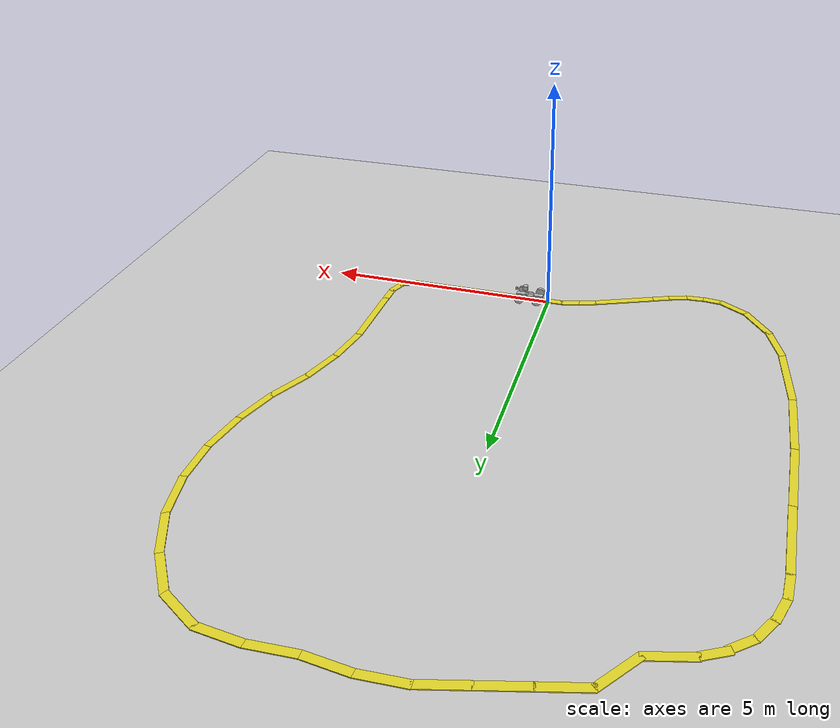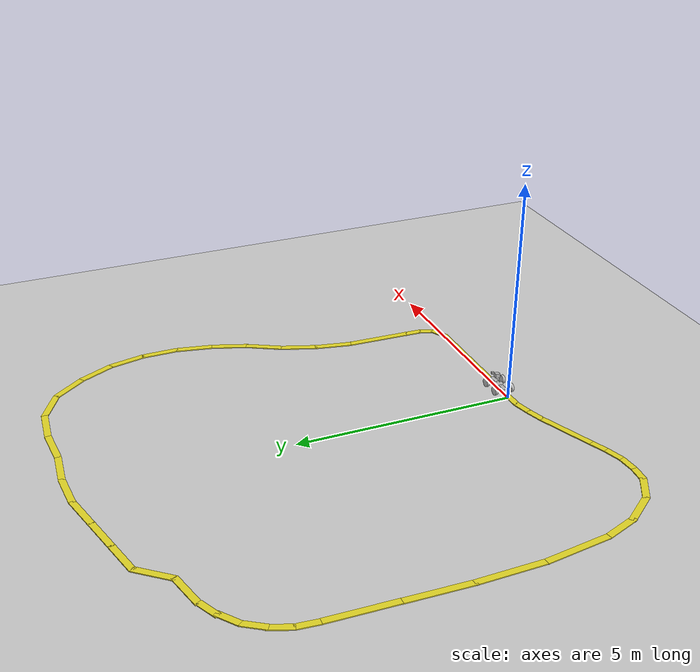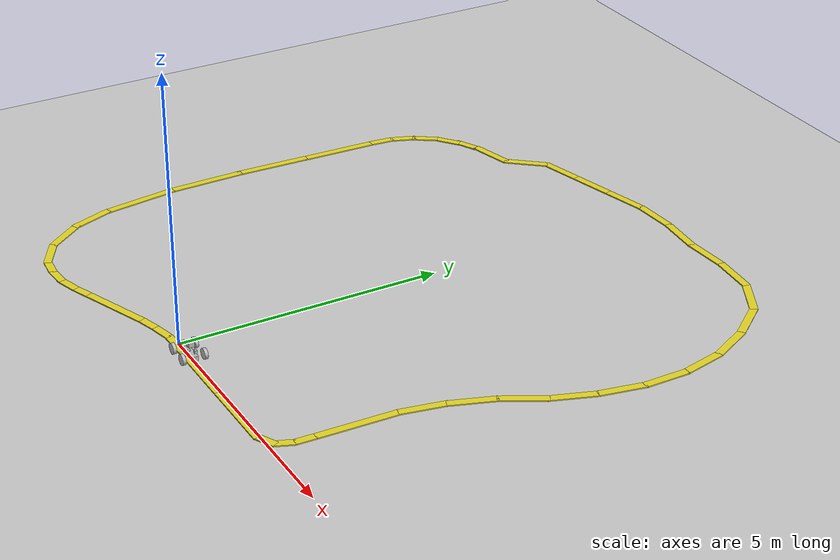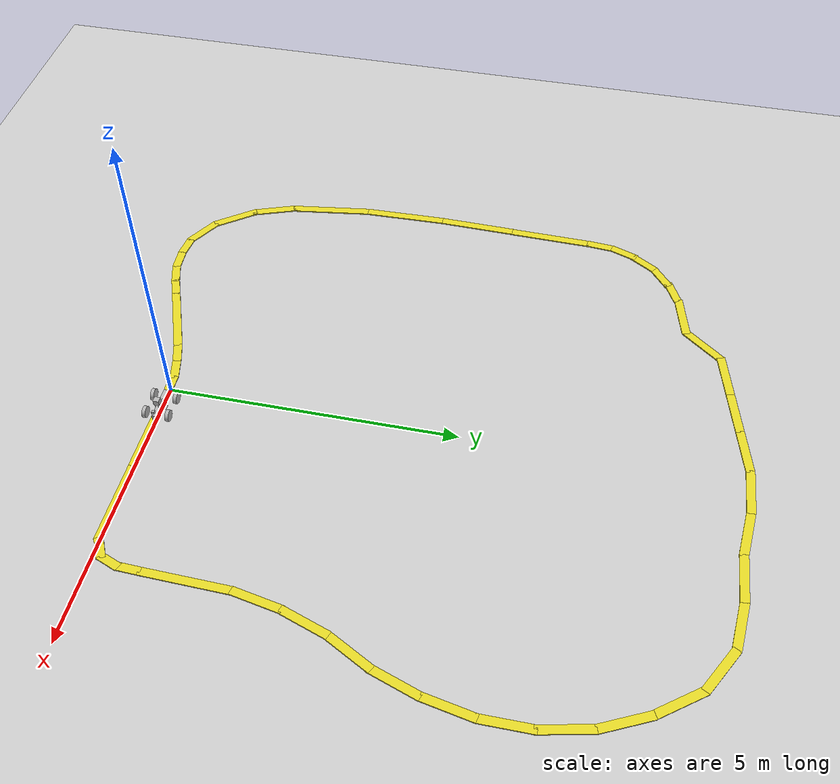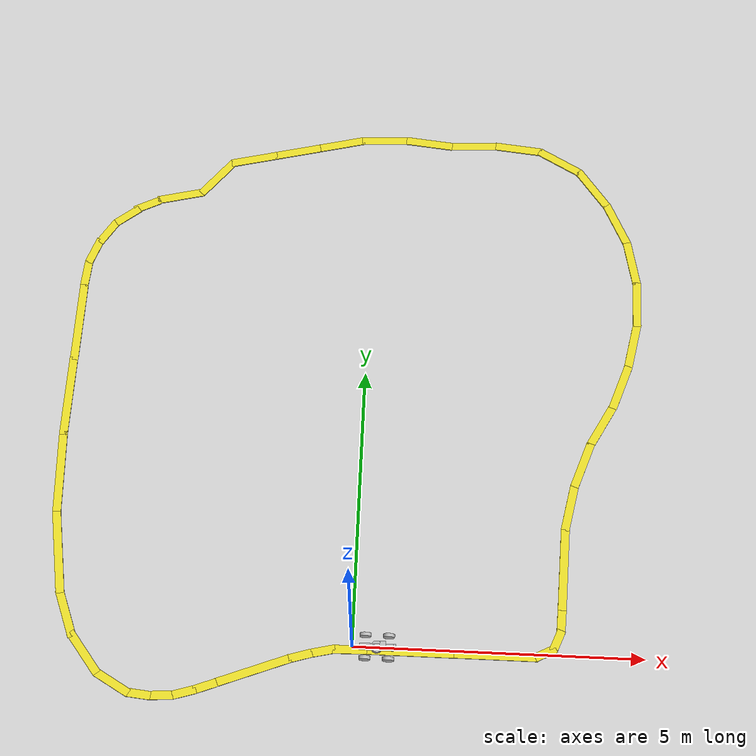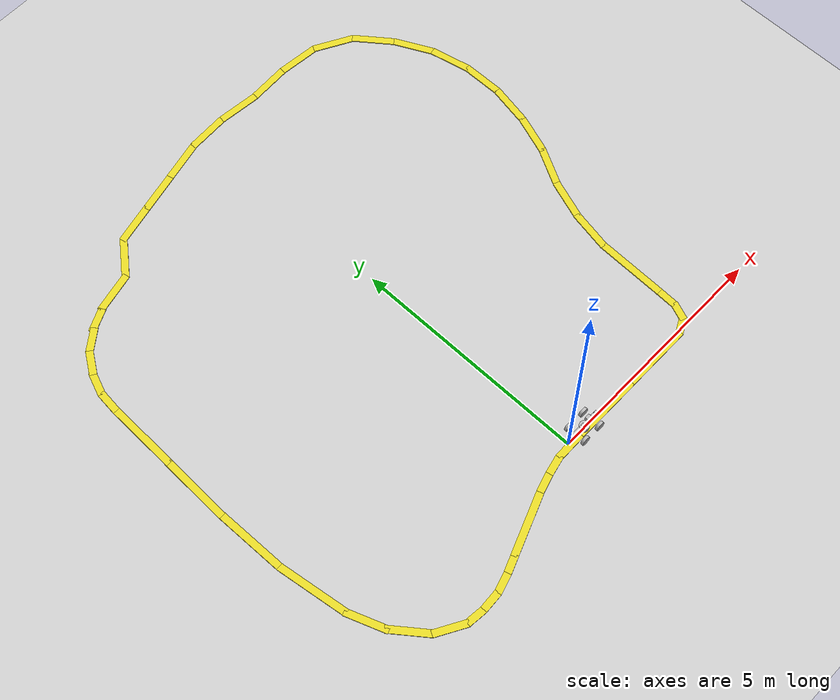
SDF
<sdf version="1.6">
 <world name="default">
  <light name="sun" type="directional">
   <pose>0 0 10 0 -0 0</pose>
   <diffuse>0.8 0.8 0.8 1</diffuse>
   <specular>0.2 0.2 0.2 1</specular>
   <attenuation>
    <range>1000</range>
    <constant>0.9</constant>
    <linear>0.01</linear>
    <quadratic>0.001</quadratic>
   </attenuation>
   <direction>-0.5 0.1 -0.9</direction>
  </light>
  <model name="ground_plane">
   <static>1</static>
   <link name="link">
    <collision name="collision">
     <geometry><plane><normal>0 0 1</normal><size>100 100</size></plane></geometry>
     <surface>
      <contact><collide_bitmask>65535</collide_bitmask></contact>
      <friction><ode><mu>100</mu><mu2>50</mu2></ode></friction>
     </surface>
    </collision>
    <visual name="visual">
     <cast_shadows>0</cast_shadows>
     <geometry><plane><normal>0 0 1</normal><size>100 100</size></plane></geometry>
     <material>
      <script><uri>file://media/materials/scripts/gazebo.material</uri><name>Gazebo/Grey</name></script>
     </material>
    </visual>
   </link>
  </model>
  <gravity>0 0 -9.8</gravity>
  <magnetic_field>6e-06 2.3e-05 -4.2e-05</magnetic_field>
  <atmosphere type="adiabatic"/>
  <physics name="default_physics" default="0" type="ode">
   <max_step_size>0.001</max_step_size>
   <real_time_factor>1</real_time_factor>
   <real_time_update_rate>1000</real_time_update_rate>
  </physics>
  <scene><ambient>0.4 0.4 0.4 1</ambient><background>0.7 0.7 0.7 1</background><shadows>1</shadows></scene>
  <audio><device>default</device></audio>
  <spherical_coordinates>
   <surface_model>EARTH_WGS84</surface_model>
   <latitude_deg>0</latitude_deg>
   <longitude_deg>0</longitude_deg>
   <elevation>0</elevation>
   <heading_deg>0</heading_deg>
  </spherical_coordinates>
  <model name="new_robot">
   <link name="base_link">
    <inertial>
     <mass>60</mass>
     <inertia>
      <ixx>1.728</ixx>
      <ixy>5.55112e-17</ixy>
      <ixz>-6.5e-07</ixz>
      <iyy>1.708</iyy>
      <iyz>0</iyz>
      <izz>3.308</izz>
     </inertia>
    </inertial>
    <collision name="base_link_collision">
     <geometry><cylinder><length>0.1</length><radius>0.1</radius></cylinder></geometry>
    </collision>
    <collision name="base_link_fixed_joint_lump__camera_link_collision_1">
     <pose>0.3 0 0.15 0 -0 0</pose>
     <geometry><box><size>0.05 0.05 0.05</size></box></geometry>
    </collision>
    <collision name="base_link_fixed_joint_lump__hokuyo_link_collision_2">
     <pose>0.1 0 0.2 0 -0 0</pose>
     <geometry><box><size>0.1 0.1 0.1</size></box></geometry>
    </collision>
    <collision name="base_link_fixed_joint_lump__link_1_collision_3">
     <geometry><box><size>0.6 0.1 0.1</size></box></geometry>
    </collision>
    <visual name="base_link_visual">
     <geometry><cylinder><length>0.1</length><radius>0.1</radius></cylinder></geometry>
    </visual>
    <visual name="base_link_fixed_joint_lump__camera_link_visual_1">
     <pose>0.3 0 0.15 0 -0 0</pose>
     <geometry><box><size>0.05 0.05 0.05</size></box></geometry>
     <material><script><uri>__default__</uri><name>__default__</name></script></material>
    </visual>
    <visual name="base_link_fixed_joint_lump__hokuyo_link_visual_2">
     <pose>0.1 0 0.2 0 -0 0</pose>
     <geometry><box><size>0.1 0.1 0.1</size></box></geometry>
     <material><script><uri>__default__</uri><name>__default__</name></script></material>
    </visual>
    <visual name="base_link_fixed_joint_lump__link_1_visual_3">
     <geometry><box><size>0.6 0.1 0.1</size></box></geometry>
    </visual>
    <visual name="base_link_fixed_joint_lump__left_front_wheelholder_link_visual_4">
     <pose>0.2 0.2 0 0 -0 0</pose>
     <geometry><box><size>0.01 0.01 0.01</size></box></geometry>
    </visual>
    <visual name="base_link_fixed_joint_lump__left_rear_wheelholder_link_visual_5">
     <pose>-0.2 0.2 0 0 -0 0</pose>
     <geometry><box><size>0.01 0.01 0.01</size></box></geometry>
    </visual>
    <visual name="base_link_fixed_joint_lump__right_front_wheelholder_link_visual_6">
     <pose>0.2 -0.2 0 0 -0 0</pose>
     <geometry><box><size>0.01 0.01 0.01</size></box></geometry>
    </visual>
    <visual name="base_link_fixed_joint_lump__right_rear_wheelholder_link_visual_7">
     <pose>-0.2 -0.2 0 0 -0 0</pose>
     <geometry><box><size>0.01 0.01 0.01</size></box></geometry>
    </visual>
    <sensor name="camera1" type="camera">
     <update_rate>30</update_rate>
     <camera name="head">
      <horizontal_fov>1.39626</horizontal_fov>
      <image><width>800</width><height>800</height><format>R8G8B8</format></image>
      <clip><near>0.02</near><far>300</far></clip>
      <noise><type>gaussian</type><mean>0</mean><stddev>0.007</stddev></noise>
     </camera>
     <plugin name="camera_controller" filename="libgazebo_ros_camera.so">
      <alwaysOn>1</alwaysOn>
      <updateRate>0.0</updateRate>
      <cameraName>rrbot/camera1</cameraName>
      <imageTopicName>image_raw</imageTopicName>
      <cameraInfoTopicName>camera_info</cameraInfoTopicName>
      <frameName>camera_link</frameName>
      <hackBaseline>0.07</hackBaseline>
      <distortionK1>0.0</distortionK1>
      <distortionK2>0.0</distortionK2>
      <distortionK3>0.0</distortionK3>
      <distortionT1>0.0</distortionT1>
      <distortionT2>0.0</distortionT2>
      <robotNamespace>/</robotNamespace>
     </plugin>
     <pose>0.3 0 0.15 0 -0 0</pose>
    </sensor>
    <sensor name="head_hokuyo_sensor" type="ray">
     <visualize>0</visualize>
     <update_rate>40</update_rate>
     <ray>
      <scan>
       <horizontal>
        <samples>720</samples>
        <resolution>1</resolution>
        <min_angle>-1.5708</min_angle>
        <max_angle>1.5708</max_angle>
       </horizontal>
       <vertical><samples>1</samples><min_angle>0</min_angle><max_angle>0</max_angle></vertical>
      </scan>
      <range><min>0.1</min><max>30</max><resolution>0.01</resolution></range>
      <noise><type>gaussian</type><mean>0</mean><stddev>0.01</stddev></noise>
     </ray>
     <plugin name="gazebo_ros_head_hokuyo_controller" filename="libgazebo_ros_laser.so">
      <topicName>/rrbot/laser/scan</topicName>
      <frameName>hokuyo_link</frameName>
      <robotNamespace>/</robotNamespace>
     </plugin>
     <pose>0.1 0 0.2 0 -0 0</pose>
    </sensor>
   </link>
   <link name="left_front_wheel_link">
    <pose>0.2 0.2 0 0 -0 0</pose>
    <inertial>
     <mass>2.5</mass>
     <inertia><ixx>0.0016</ixx><ixy>0</ixy><ixz>0</ixz><iyy>0.0016</iyy><iyz>0</iyz><izz>0.003</izz></inertia>
    </inertial>
    <collision name="left_front_wheel_link_collision">
     <pose>0 0 0 1.57079 -0 0</pose>
     <geometry><cylinder><length>0.06</length><radius>0.1</radius></cylinder></geometry>
     <surface>
      <contact><ode><kp>1e+07</kp><kd>1</kd></ode></contact>
      <friction><ode><mu>0.85</mu><mu2>0.2</mu2><fdir1>1 0 0</fdir1></ode></friction>
     </surface>
    </collision>
    <visual name="left_front_wheel_link_visual">
     <pose>0 0 0 1.57079 -0 0</pose>
     <geometry><cylinder><length>0.06</length><radius>0.1</radius></cylinder></geometry>
     <material><script><uri>__default__</uri><name>__default__</name></script></material>
    </visual>
   </link>
   <joint name="left_front_wheel_joint" type="revolute">
    <child>left_front_wheel_link</child>
    <parent>base_link</parent>
    <axis>
     <xyz>0 1 0</xyz>
     <limit><lower>-1e+16</lower><upper>1e+16</upper></limit>
     <dynamics><spring_reference>0</spring_reference><spring_stiffness>0</spring_stiffness></dynamics>
     <use_parent_model_frame>1</use_parent_model_frame>
    </axis>
   </joint>
   <link name="left_rear_wheel_link">
    <pose>-0.2 0.2 0 0 -0 0</pose>
    <inertial>
     <mass>2.5</mass>
     <inertia><ixx>0.0016</ixx><ixy>0</ixy><ixz>0</ixz><iyy>0.0016</iyy><iyz>0</iyz><izz>0.003</izz></inertia>
    </inertial>
    <collision name="left_rear_wheel_link_collision">
     <pose>0 0 0 1.57079 -0 0</pose>
     <geometry><cylinder><length>0.06</length><radius>0.1</radius></cylinder></geometry>
     <surface>
      <contact><ode><kp>1e+07</kp><kd>1</kd></ode></contact>
      <friction><ode><mu>0.85</mu><mu2>0.2</mu2><fdir1>1 0 0</fdir1></ode></friction>
     </surface>
    </collision>
    <visual name="left_rear_wheel_link_visual">
     <pose>0 0 0 1.57079 -0 0</pose>
     <geometry><cylinder><length>0.06</length><radius>0.1</radius></cylinder></geometry>
     <material><script><uri>__default__</uri><name>__default__</name></script></material>
    </visual>
   </link>
   <joint name="left_rear_wheel_joint" type="revolute">
    <child>left_rear_wheel_link</child>
    <parent>base_link</parent>
    <axis>
     <xyz>0 1 0</xyz>
     <limit><lower>-1e+16</lower><upper>1e+16</upper></limit>
     <dynamics><spring_reference>0</spring_reference><spring_stiffness>0</spring_stiffness></dynamics>
     <use_parent_model_frame>1</use_parent_model_frame>
    </axis>
   </joint>
   <link name="right_front_wheel_link">
    <pose>0.2 -0.2 0 0 -0 0</pose>
    <inertial>
     <mass>2.5</mass>
     <inertia><ixx>0.0016</ixx><ixy>0</ixy><ixz>0</ixz><iyy>0.0016</iyy><iyz>0</iyz><izz>0.003</izz></inertia>
    </inertial>
    <collision name="right_front_wheel_link_collision">
     <pose>0 0 0 1.57079 -0 0</pose>
     <geometry><cylinder><length>0.06</length><radius>0.1</radius></cylinder></geometry>
     <surface>
      <contact><ode><kp>1e+07</kp><kd>1</kd></ode></contact>
      <friction><ode><mu>0.85</mu><mu2>0.2</mu2><fdir1>1 0 0</fdir1></ode></friction>
     </surface>
    </collision>
    <visual name="right_front_wheel_link_visual">
     <pose>0 0 0 1.57079 -0 0</pose>
     <geometry><cylinder><length>0.06</length><radius>0.1</radius></cylinder></geometry>
     <material><script><uri>__default__</uri><name>__default__</name></script></material>
    </visual>
   </link>
   <joint name="right_front_wheel_joint" type="revolute">
    <child>right_front_wheel_link</child>
    <parent>base_link</parent>
    <axis>
     <xyz>0 1 0</xyz>
     <limit><lower>-1e+16</lower><upper>1e+16</upper></limit>
     <dynamics><spring_reference>0</spring_reference><spring_stiffness>0</spring_stiffness></dynamics>
     <use_parent_model_frame>1</use_parent_model_frame>
    </axis>
   </joint>
   <link name="right_rear_wheel_link">
    <pose>-0.2 -0.2 0 0 -0 0</pose>
    <inertial>
     <mass>2.5</mass>
     <inertia><ixx>0.0016</ixx><ixy>0</ixy><ixz>0</ixz><iyy>0.0016</iyy><iyz>0</iyz><izz>0.003</izz></inertia>
    </inertial>
    <collision name="right_rear_wheel_link_collision">
     <pose>0 0 0 1.57079 -0 0</pose>
     <geometry><cylinder><length>0.06</length><radius>0.1</radius></cylinder></geometry>
     <surface>
      <contact><ode><kp>1e+07</kp><kd>1</kd></ode></contact>
      <friction><ode><mu>0.85</mu><mu2>0.2</mu2><fdir1>1 0 0</fdir1></ode></friction>
     </surface>
    </collision>
    <visual name="right_rear_wheel_link_visual">
     <pose>0 0 0 1.57079 -0 0</pose>
     <geometry><cylinder><length>0.06</length><radius>0.1</radius></cylinder></geometry>
     <material><script><uri>__default__</uri><name>__default__</name></script></material>
    </visual>
   </link>
   <joint name="right_rear_wheel_joint" type="revolute">
    <child>right_rear_wheel_link</child>
    <parent>base_link</parent>
    <axis>
     <xyz>0 1 0</xyz>
     <limit><lower>-1e+16</lower><upper>1e+16</upper></limit>
     <dynamics><spring_reference>0</spring_reference><spring_stiffness>0</spring_stiffness></dynamics>
     <use_parent_model_frame>1</use_parent_model_frame>
    </axis>
   </joint>
   <plugin name="differential_drive_controller" filename="libgazebo_ros_diff_drive.so">
    <updateRate>20</updateRate>
    <leftJoint>left_front_wheel_joint</leftJoint>
    <rightJoint>right_front_wheel_joint</rightJoint>
    <wheelSeparation>0.4</wheelSeparation>
    <wheelDiameter>0.2</wheelDiameter>
    <wheelAcceleration>1.0</wheelAcceleration>
    <wheelTorque>30</wheelTorque>
    <commandTopic>/cmd_vel</commandTopic>
    <odometryTopic>odom</odometryTopic>
    <odometryFrame>odom</odometryFrame>
    <robotBaseFrame>base_link</robotBaseFrame>
    <odometrySource>1</odometrySource>
    <publishWheelTF>1</publishWheelTF>
    <publishOdom>1</publishOdom>
    <publishOdomTF>0</publishOdomTF>
    <publishWheelJointState>1</publishWheelJointState>
    <legacyMode>0</legacyMode>
    <robotNamespace>/</robotNamespace>
   </plugin>
   <plugin name="differential_drive_controller" filename="libgazebo_ros_diff_drive.so">
    <updateRate>20</updateRate>
    <leftJoint>left_rear_wheel_link</leftJoint>
    <rightJoint>right_rear_wheel_link</rightJoint>
    <wheelSeparation>0.6</wheelSeparation>
    <wheelDiameter>0.2</wheelDiameter>
    <wheelAcceleration>1.0</wheelAcceleration>
    <wheelTorque>30</wheelTorque>
    <commandTopic>/cmd_vel</commandTopic>
    <odometryTopic>odom</odometryTopic>
    <odometryFrame>odom</odometryFrame>
    <robotBaseFrame>base_link</robotBaseFrame>
    <odometrySource>1</odometrySource>
    <publishWheelTF>1</publishWheelTF>
    <publishOdom>1</publishOdom>
    <publishOdomTF>0</publishOdomTF>
    <publishWheelJointState>1</publishWheelJointState>
    <legacyMode>0</legacyMode>
    <robotNamespace>/</robotNamespace>
   </plugin>
   <plugin name="imu_plugin" filename="libgazebo_ros_imu.so">
    <alwaysOn>1</alwaysOn>
    <bodyName>base_link</bodyName>
    <topicName>imu/data</topicName>
    <serviceName>imu_service</serviceName>
    <gaussianNoise>0.0</gaussianNoise>
    <updateRate>20.0</updateRate>
    <robotNamespace>/</robotNamespace>
   </plugin>
   <static>0</static>
   <plugin name="gazebo_ros_gps" filename="libhector_gazebo_ros_gps.so">
    <updateRate>4.0</updateRate>
    <bodyName>base_link</bodyName>
    <frameId>gps_link</frameId>
    <topicName>/gps/fix</topicName>
    <velocityTopicName>/gps/fix_velocity</velocityTopicName>
    <referenceLatitude>41.22</referenceLatitude>
    <referenceLongitude>30.10</referenceLongitude>
    <referenceHeading>90</referenceHeading>
    <referenceAltitude>10</referenceAltitude>
    <offset>0 0 0</offset>
    <drift>0.0 0.0 0.0</drift>
    <gaussianNoise>0.0 0.0 0.0</gaussianNoise>
    <velocityDrift>0.001 0.001 0.001</velocityDrift>
    <velocityGaussianNoise>0.5 0.5 0.5</velocityGaussianNoise>
    <robotNamespace>/</robotNamespace>
   </plugin>
   <pose>0.42458 -0.001335 0.09999 1e-06 6e-06 -0.005031</pose>
  </model>
  <model name="unit_box">
   <static>1</static>
   <pose>0.997641 -0.039919 4.6e-05 0 -0 0</pose>
   <link name="link">
    <gravity>0</gravity>
    <inertial>
     <mass>1</mass>
     <inertia>
      <ixx>0.166667</ixx>
      <ixy>0</ixy>
      <ixz>0</ixz>
      <iyy>0.166667</iyy>
      <iyz>0</iyz>
      <izz>0.166667</izz>
     </inertia>
    </inertial>
    <collision name="collision"><geometry><box><size>0 0 0</size></box></geometry></collision>
    <visual name="visual">
     <geometry><box><size>1.484 0.147 0.021</size></box></geometry>
     <material>
      <script><name>Gazebo/Yellow</name><uri>file://media/materials/scripts/gazebo.material</uri></script>
     </material>
    </visual>
   </link>
  </model>
  <model name="unit_box_clone">
   <static>1</static>
   <pose>2.43042 -0.038085 4.6e-05 0 -0 0</pose>
   <link name="link">
    <gravity>0</gravity>
    <inertial>
     <mass>1</mass>
     <inertia>
      <ixx>0.166667</ixx>
      <ixy>0</ixy>
      <ixz>0</ixz>
      <iyy>0.166667</iyy>
      <iyz>0</iyz>
      <izz>0.166667</izz>
     </inertia>
    </inertial>
    <collision name="collision"><geometry><box><size>0 0 0</size></box></geometry></collision>
    <visual name="visual">
     <geometry><box><size>1.484 0.147 0.021</size></box></geometry>
     <material>
      <script><name>Gazebo/Yellow</name><uri>file://media/materials/scripts/gazebo.material</uri></script>
     </material>
    </visual>
   </link>
  </model>
  <model name="unit_box_clone_0">
   <static>1</static>
   <pose>3.2971 0.042162 4.6e-05 0 -0 0.467138</pose>
   <link name="link">
    <gravity>0</gravity>
    <inertial>
     <mass>1</mass>
     <inertia>
      <ixx>0.166667</ixx>
      <ixy>0</ixy>
      <ixz>0</ixz>
      <iyy>0.166667</iyy>
      <iyz>0</iyz>
      <izz>0.166667</izz>
     </inertia>
    </inertial>
    <collision name="collision"><geometry><box><size>0 0 0</size></box></geometry></collision>
    <visual name="visual">
     <geometry><box><size>0.392325 0.147 0.021</size></box></geometry>
     <material>
      <script><name>Gazebo/Yellow</name><uri>file://media/materials/scripts/gazebo.material</uri></script>
     </material>
    </visual>
   </link>
  </model>
  <model name="unit_box_clone_0_clone">
   <static>1</static>
   <pose>3.4989 0.269404 4.6e-05 0 -0 1.19296</pose>
   <link name="link">
    <gravity>0</gravity>
    <inertial>
     <mass>1</mass>
     <inertia>
      <ixx>0.166667</ixx>
      <ixy>0</ixy>
      <ixz>0</ixz>
      <iyy>0.166667</iyy>
      <iyz>0</iyz>
      <izz>0.166667</izz>
     </inertia>
    </inertial>
    <collision name="collision"><geometry><box><size>0 0 0</size></box></geometry></collision>
    <visual name="visual">
     <geometry><box><size>0.392326 0.147 0.021</size></box></geometry>
     <material>
      <script><name>Gazebo/Yellow</name><uri>file://media/materials/scripts/gazebo.material</uri></script>
     </material>
    </visual>
   </link>
  </model>
  <model name="unit_box_clone_0_clone_0">
   <static>1</static>
   <pose>3.56422 0.606781 4.6e-05 0 -0 1.53033</pose>
   <link name="link">
    <gravity>0</gravity>
    <inertial>
     <mass>1</mass>
     <inertia>
      <ixx>0.166667</ixx>
      <ixy>0</ixy>
      <ixz>0</ixz>
      <iyy>0.166667</iyy>
      <iyz>0</iyz>
      <izz>0.166667</izz>
     </inertia>
    </inertial>
    <collision name="collision"><geometry><box><size>0 0 0</size></box></geometry></collision>
    <visual name="visual">
     <geometry><box><size>0.392326 0.147 0.021</size></box></geometry>
     <material>
      <script><name>Gazebo/Yellow</name><uri>file://media/materials/scripts/gazebo.material</uri></script>
     </material>
    </visual>
   </link>
  </model>
  <model name="unit_box_clone_clone">
   <static>1</static>
   <pose>3.59254 1.50695 4.6e-05 0 0 -1.59906</pose>
   <link name="link">
    <gravity>0</gravity>
    <inertial>
     <mass>1</mass>
     <inertia>
      <ixx>0.166667</ixx>
      <ixy>0</ixy>
      <ixz>0</ixz>
      <iyy>0.166667</iyy>
      <iyz>0</iyz>
      <izz>0.166667</izz>
     </inertia>
    </inertial>
    <collision name="collision"><geometry><box><size>0 0 0</size></box></geometry></collision>
    <visual name="visual">
     <geometry><box><size>1.484 0.147 0.021</size></box></geometry>
     <material>
      <script><name>Gazebo/Yellow</name><uri>file://media/materials/scripts/gazebo.material</uri></script>
     </material>
    </visual>
   </link>
  </model>
  <model name="unit_box_clone_clone_clone">
   <static>1</static>
   <pose>3.69131 2.65819 4.6e-05 0 0 -1.76385</pose>
   <link name="link">
    <gravity>0</gravity>
    <inertial>
     <mass>1</mass>
     <inertia>
      <ixx>0.166667</ixx>
      <ixy>0</ixy>
      <ixz>0</ixz>
      <iyy>0.166667</iyy>
      <iyz>0</iyz>
      <izz>0.166667</izz>
     </inertia>
    </inertial>
    <collision name="collision"><geometry><box><size>0 0 0</size></box></geometry></collision>
    <visual name="visual">
     <geometry><box><size>0.867362 0.147 0.021</size></box></geometry>
     <material>
      <script><name>Gazebo/Yellow</name><uri>file://media/materials/scripts/gazebo.material</uri></script>
     </material>
    </visual>
   </link>
  </model>
  <model name="unit_box_clone_clone_clone_clone">
   <static>1</static>
   <pose>3.909 3.44845 4.6e-05 0 0 -1.90739</pose>
   <link name="link">
    <gravity>0</gravity>
    <inertial>
     <mass>1</mass>
     <inertia>
      <ixx>0.166667</ixx>
      <ixy>0</ixy>
      <ixz>0</ixz>
      <iyy>0.166667</iyy>
      <iyz>0</iyz>
      <izz>0.166667</izz>
     </inertia>
    </inertial>
    <collision name="collision"><geometry><box><size>0 0 0</size></box></geometry></collision>
    <visual name="visual">
     <geometry><box><size>0.867362 0.147 0.021</size></box></geometry>
     <material>
      <script><name>Gazebo/Yellow</name><uri>file://media/materials/scripts/gazebo.material</uri></script>
     </material>
    </visual>
   </link>
  </model>
  <model name="unit_box_clone_clone_clone_clone_clone">
   <static>1</static>
   <pose>4.24694 4.20708 4.6e-05 0 0 -2.06699</pose>
   <link name="link">
    <gravity>0</gravity>
    <inertial>
     <mass>1</mass>
     <inertia>
      <ixx>0.166667</ixx>
      <ixy>0</ixy>
      <ixz>0</ixz>
      <iyy>0.166667</iyy>
      <iyz>0</iyz>
      <izz>0.166667</izz>
     </inertia>
    </inertial>
    <collision name="collision"><geometry><box><size>0 0 0</size></box></geometry></collision>
    <visual name="visual">
     <geometry><box><size>0.867362 0.147 0.021</size></box></geometry>
     <material>
      <script><name>Gazebo/Yellow</name><uri>file://media/materials/scripts/gazebo.material</uri></script>
     </material>
    </visual>
   </link>
  </model>
  <model name="unit_box_clone_clone_clone_clone_clone_0">
   <static>1</static>
   <pose>4.57975 4.95327 4.6e-05 0 0 -1.90739</pose>
   <link name="link">
    <gravity>0</gravity>
    <inertial>
     <mass>1</mass>
     <inertia>
      <ixx>0.166667</ixx>
      <ixy>0</ixy>
      <ixz>0</ixz>
      <iyy>0.166667</iyy>
      <iyz>0</iyz>
      <izz>0.166667</izz>
     </inertia>
    </inertial>
    <collision name="collision"><geometry><box><size>0 0 0</size></box></geometry></collision>
    <visual name="visual">
     <geometry><box><size>0.867362 0.147 0.021</size></box></geometry>
     <material>
      <script><name>Gazebo/Yellow</name><uri>file://media/materials/scripts/gazebo.material</uri></script>
     </material>
    </visual>
   </link>
  </model>
  <model name="unit_box_clone_clone_clone_clone_0">
   <static>1</static>
   <pose>4.798 5.76492 4.6e-05 0 0 -1.76385</pose>
   <link name="link">
    <gravity>0</gravity>
    <inertial>
     <mass>1</mass>
     <inertia>
      <ixx>0.166667</ixx>
      <ixy>0</ixy>
      <ixz>0</ixz>
      <iyy>0.166667</iyy>
      <iyz>0</iyz>
      <izz>0.166667</izz>
     </inertia>
    </inertial>
    <collision name="collision"><geometry><box><size>0 0 0</size></box></geometry></collision>
    <visual name="visual">
     <geometry><box><size>0.867362 0.147 0.021</size></box></geometry>
     <material>
      <script><name>Gazebo/Yellow</name><uri>file://media/materials/scripts/gazebo.material</uri></script>
     </material>
    </visual>
   </link>
  </model>
  <model name="unit_box_clone_clone_clone_clone_1">
   <static>1</static>
   <pose>4.87734 6.58817 4.6e-05 0 0 -1.56643</pose>
   <link name="link">
    <gravity>0</gravity>
    <inertial>
     <mass>1</mass>
     <inertia>
      <ixx>0.166667</ixx>
      <ixy>0</ixy>
      <ixz>0</ixz>
      <iyy>0.166667</iyy>
      <iyz>0</iyz>
      <izz>0.166667</izz>
     </inertia>
    </inertial>
    <collision name="collision"><geometry><box><size>0 0 0</size></box></geometry></collision>
    <visual name="visual">
     <geometry><box><size>0.867362 0.147 0.021</size></box></geometry>
     <material>
      <script><name>Gazebo/Yellow</name><uri>file://media/materials/scripts/gazebo.material</uri></script>
     </material>
    </visual>
   </link>
  </model>
  <model name="unit_box_clone_clone_clone_clone_1_clone">
   <static>1</static>
   <pose>4.78782 7.39334 4.6e-05 0 0 -1.35597</pose>
   <link name="link">
    <gravity>0</gravity>
    <inertial>
     <mass>1</mass>
     <inertia>
      <ixx>0.166667</ixx>
      <ixy>0</ixy>
      <ixz>0</ixz>
      <iyy>0.166667</iyy>
      <iyz>0</iyz>
      <izz>0.166667</izz>
     </inertia>
    </inertial>
    <collision name="collision"><geometry><box><size>0 0 0</size></box></geometry></collision>
    <visual name="visual">
     <geometry><box><size>0.867362 0.147 0.021</size></box></geometry>
     <material>
      <script><name>Gazebo/Yellow</name><uri>file://media/materials/scripts/gazebo.material</uri></script>
     </material>
    </visual>
   </link>
  </model>
  <model name="unit_box_clone_clone_clone_clone_1_clone_clone">
   <static>1</static>
   <pose>4.5092 8.18839 4.6e-05 0 0 -1.1136</pose>
   <link name="link">
    <gravity>0</gravity>
    <inertial>
     <mass>1</mass>
     <inertia>
      <ixx>0.166667</ixx>
      <ixy>0</ixy>
      <ixz>0</ixz>
      <iyy>0.166667</iyy>
      <iyz>0</iyz>
      <izz>0.166667</izz>
     </inertia>
    </inertial>
    <collision name="collision"><geometry><box><size>0 0 0</size></box></geometry></collision>
    <visual name="visual">
     <geometry><box><size>0.867362 0.147 0.021</size></box></geometry>
     <material>
      <script><name>Gazebo/Yellow</name><uri>file://media/materials/scripts/gazebo.material</uri></script>
     </material>
    </visual>
   </link>
  </model>
  <model name="unit_box_clone_clone_clone_clone_1_clone_clone_0">
   <static>1</static>
   <pose>4.05811 8.9062 4.6e-05 0 0 -0.916846</pose>
   <link name="link">
    <gravity>0</gravity>
    <inertial>
     <mass>1</mass>
     <inertia>
      <ixx>0.166667</ixx>
      <ixy>0</ixy>
      <ixz>0</ixz>
      <iyy>0.166667</iyy>
      <iyz>0</iyz>
      <izz>0.166667</izz>
     </inertia>
    </inertial>
    <collision name="collision"><geometry><box><size>0 0 0</size></box></geometry></collision>
    <visual name="visual">
     <geometry><box><size>0.867362 0.147 0.021</size></box></geometry>
     <material>
      <script><name>Gazebo/Yellow</name><uri>file://media/materials/scripts/gazebo.material</uri></script>
     </material>
    </visual>
   </link>
  </model>
  <model name="unit_box_clone_clone_clone_clone_1_clone_clone_0_clone">
   <static>1</static>
   <pose>3.43643 9.43481 4.6e-05 0 0 -0.497983</pose>
   <link name="link">
    <gravity>0</gravity>
    <inertial>
     <mass>1</mass>
     <inertia>
      <ixx>0.166667</ixx>
      <ixy>0</ixy>
      <ixz>0</ixz>
      <iyy>0.166667</iyy>
      <iyz>0</iyz>
      <izz>0.166667</izz>
     </inertia>
    </inertial>
    <collision name="collision"><geometry><box><size>0 0 0</size></box></geometry></collision>
    <visual name="visual">
     <geometry><box><size>0.867362 0.147 0.021</size></box></geometry>
     <material>
      <script><name>Gazebo/Yellow</name><uri>file://media/materials/scripts/gazebo.material</uri></script>
     </material>
    </visual>
   </link>
  </model>
  <model name="unit_box_clone_clone_clone_clone_1_clone_clone_0_clone_clone">
   <static>1</static>
   <pose>2.66546 9.67361 4.6e-05 0 0 -0.100911</pose>
   <link name="link">
    <gravity>0</gravity>
    <inertial>
     <mass>1</mass>
     <inertia>
      <ixx>0.166667</ixx>
      <ixy>0</ixy>
      <ixz>0</ixz>
      <iyy>0.166667</iyy>
      <iyz>0</iyz>
      <izz>0.166667</izz>
     </inertia>
    </inertial>
    <collision name="collision"><geometry><box><size>0 0 0</size></box></geometry></collision>
    <visual name="visual">
     <geometry><box><size>0.867362 0.147 0.021</size></box></geometry>
     <material>
      <script><name>Gazebo/Yellow</name><uri>file://media/materials/scripts/gazebo.material</uri></script>
     </material>
    </visual>
   </link>
  </model>
  <model name="unit_box_clone_clone_clone_clone_1_clone_clone_0_clone_clone_clone">
   <static>1</static>
   <pose>1.8162 9.6949 4.6e-05 0 -0 0.047714</pose>
   <link name="link">
    <gravity>0</gravity>
    <inertial>
     <mass>1</mass>
     <inertia>
      <ixx>0.166667</ixx>
      <ixy>0</ixy>
      <ixz>0</ixz>
      <iyy>0.166667</iyy>
      <iyz>0</iyz>
      <izz>0.166667</izz>
     </inertia>
    </inertial>
    <collision name="collision"><geometry><box><size>0 0 0</size></box></geometry></collision>
    <visual name="visual">
     <geometry><box><size>0.867362 0.147 0.021</size></box></geometry>
     <material>
      <script><name>Gazebo/Yellow</name><uri>file://media/materials/scripts/gazebo.material</uri></script>
     </material>
    </visual>
   </link>
  </model>
  <model name="unit_box_clone_clone_clone_clone_1_clone_clone_0_clone_clone_clone_0">
   <static>1</static>
   <pose>0.983846 9.71556 4.6e-05 0 0 -0.100911</pose>
   <link name="link">
    <gravity>0</gravity>
    <inertial>
     <mass>1</mass>
     <inertia>
      <ixx>0.166667</ixx>
      <ixy>0</ixy>
      <ixz>0</ixz>
      <iyy>0.166667</iyy>
      <iyz>0</iyz>
      <izz>0.166667</izz>
     </inertia>
    </inertial>
    <collision name="collision"><geometry><box><size>0 0 0</size></box></geometry></collision>
    <visual name="visual">
     <geometry><box><size>0.867362 0.147 0.021</size></box></geometry>
     <material>
      <script><name>Gazebo/Yellow</name><uri>file://media/materials/scripts/gazebo.material</uri></script>
     </material>
    </visual>
   </link>
  </model>
  <model name="unit_box_clone_clone_clone_clone_1_clone_clone_0_clone_clone_clone_clone">
   <static>1</static>
   <pose>0.151502 9.73907 4.6e-05 0 -0 0.047714</pose>
   <link name="link">
    <gravity>0</gravity>
    <inertial>
     <mass>1</mass>
     <inertia>
      <ixx>0.166667</ixx>
      <ixy>0</ixy>
      <ixz>0</ixz>
      <iyy>0.166667</iyy>
      <iyz>0</iyz>
      <izz>0.166667</izz>
     </inertia>
    </inertial>
    <collision name="collision"><geometry><box><size>0 0 0</size></box></geometry></collision>
    <visual name="visual">
     <geometry><box><size>0.867362 0.147 0.021</size></box></geometry>
     <material>
      <script><name>Gazebo/Yellow</name><uri>file://media/materials/scripts/gazebo.material</uri></script>
     </material>
    </visual>
   </link>
  </model>
  <model name="unit_box_clone_clone_clone_clone_1_clone_clone_0_clone_clone_clone_clone_clone">
   <static>1</static>
   <pose>-0.665159 9.62074 4.6e-05 0 -0 0.234321</pose>
   <link name="link">
    <gravity>0</gravity>
    <inertial>
     <mass>1</mass>
     <inertia>
      <ixx>0.166667</ixx>
      <ixy>0</ixy>
      <ixz>0</ixz>
      <iyy>0.166667</iyy>
      <iyz>0</iyz>
      <izz>0.166667</izz>
     </inertia>
    </inertial>
    <collision name="collision"><geometry><box><size>0 0 0</size></box></geometry></collision>
    <visual name="visual">
     <geometry><box><size>0.867362 0.147 0.021</size></box></geometry>
     <material>
      <script><name>Gazebo/Yellow</name><uri>file://media/materials/scripts/gazebo.material</uri></script>
     </material>
    </visual>
   </link>
  </model>
  <model name="unit_box_clone_clone_clone_clone_1_clone_clone_0_clone_clone_clone_clone_clone_clone">
   <static>1</static>
   <pose>-1.4834 9.42485 4.6e-05 0 -0 0.234321</pose>
   <link name="link">
    <gravity>0</gravity>
    <inertial>
     <mass>1</mass>
     <inertia>
      <ixx>0.166667</ixx>
      <ixy>0</ixy>
      <ixz>0</ixz>
      <iyy>0.166667</iyy>
      <iyz>0</iyz>
      <izz>0.166667</izz>
     </inertia>
    </inertial>
    <collision name="collision"><geometry><box><size>0 0 0</size></box></geometry></collision>
    <visual name="visual">
     <geometry><box><size>0.867362 0.147 0.021</size></box></geometry>
     <material>
      <script><name>Gazebo/Yellow</name><uri>file://media/materials/scripts/gazebo.material</uri></script>
     </material>
    </visual>
   </link>
  </model>
  <model name="unit_box_clone_clone_clone_clone_1_clone_clone_0_clone_clone_clone_clone_clone_clone_clone">
   <static>1</static>
   <pose>-2.28727 9.23298 4.6e-05 0 -0 0.234321</pose>
   <link name="link">
    <gravity>0</gravity>
    <inertial>
     <mass>1</mass>
     <inertia>
      <ixx>0.166667</ixx>
      <ixy>0</ixy>
      <ixz>0</ixz>
      <iyy>0.166667</iyy>
      <iyz>0</iyz>
      <izz>0.166667</izz>
     </inertia>
    </inertial>
    <collision name="collision"><geometry><box><size>0 0 0</size></box></geometry></collision>
    <visual name="visual">
     <geometry><box><size>0.867362 0.147 0.021</size></box></geometry>
     <material>
      <script><name>Gazebo/Yellow</name><uri>file://media/materials/scripts/gazebo.material</uri></script>
     </material>
    </visual>
   </link>
  </model>
  <model name="unit_box_clone_clone_clone_clone_1_clone_clone_0_clone_clone_clone_clone_clone_clone_clone_clone">
   <static>1</static>
   <pose>-2.94676 8.81367 4.6e-05 0 -0 0.877686</pose>
   <link name="link">
    <gravity>0</gravity>
    <inertial>
     <mass>1</mass>
     <inertia>
      <ixx>0.166667</ixx>
      <ixy>0</ixy>
      <ixz>0</ixz>
      <iyy>0.166667</iyy>
      <iyz>0</iyz>
      <izz>0.166667</izz>
     </inertia>
    </inertial>
    <collision name="collision"><geometry><box><size>0 0 0</size></box></geometry></collision>
    <visual name="visual">
     <geometry><box><size>0.867362 0.147 0.021</size></box></geometry>
     <material>
      <script><name>Gazebo/Yellow</name><uri>file://media/materials/scripts/gazebo.material</uri></script>
     </material>
    </visual>
   </link>
  </model>
  <model name="unit_box_clone_clone_clone_clone_1_clone_clone_0_clone_clone_clone_clone_clone_clone_clone_clone_0">
   <static>1</static>
   <pose>-3.59958 8.40441 4.6e-05 0 -0 0.234321</pose>
   <link name="link">
    <gravity>0</gravity>
    <inertial>
     <mass>1</mass>
     <inertia>
      <ixx>0.166667</ixx>
      <ixy>0</ixy>
      <ixz>0</ixz>
      <iyy>0.166667</iyy>
      <iyz>0</iyz>
      <izz>0.166667</izz>
     </inertia>
    </inertial>
    <collision name="collision"><geometry><box><size>0 0 0</size></box></geometry></collision>
    <visual name="visual">
     <geometry><box><size>0.867362 0.147 0.021</size></box></geometry>
     <material>
      <script><name>Gazebo/Yellow</name><uri>file://media/materials/scripts/gazebo.material</uri></script>
     </material>
    </visual>
   </link>
  </model>
  <model name="unit_box_clone_clone_clone_clone_1_clone_clone_0_clone_clone_clone_clone_clone_clone_clone_clone_0_clone">
   <static>1</static>
   <pose>-4.20841 8.192 4.6e-05 0 -0 0.445891</pose>
   <link name="link">
    <gravity>0</gravity>
    <inertial>
     <mass>1</mass>
     <inertia>
      <ixx>0.166667</ixx>
      <ixy>0</ixy>
      <ixz>0</ixz>
      <iyy>0.166667</iyy>
      <iyz>0</iyz>
      <izz>0.166667</izz>
     </inertia>
    </inertial>
    <collision name="collision"><geometry><box><size>0 0 0</size></box></geometry></collision>
    <visual name="visual">
     <geometry><box><size>0.508923 0.147 0.021</size></box></geometry>
     <material>
      <script><name>Gazebo/Yellow</name><uri>file://media/materials/scripts/gazebo.material</uri></script>
     </material>
    </visual>
   </link>
  </model>
  <model name="unit_box_clone_clone_clone_clone_1_clone_clone_0_clone_clone_clone_clone_clone_clone_clone_clone_0_clone_clone">
   <static>1</static>
   <pose>-4.55513 7.95405 4.6e-05 0 -0 0.651266</pose>
   <link name="link">
    <gravity>0</gravity>
    <inertial>
     <mass>1</mass>
     <inertia>
      <ixx>0.166667</ixx>
      <ixy>0</ixy>
      <ixz>0</ixz>
      <iyy>0.166667</iyy>
      <iyz>0</iyz>
      <izz>0.166667</izz>
     </inertia>
    </inertial>
    <collision name="collision"><geometry><box><size>0 0 0</size></box></geometry></collision>
    <visual name="visual">
     <geometry><box><size>0.508922 0.147 0.021</size></box></geometry>
     <material>
      <script><name>Gazebo/Yellow</name><uri>file://media/materials/scripts/gazebo.material</uri></script>
     </material>
    </visual>
   </link>
  </model>
  <model name="unit_box_clone_clone_clone_clone_1_clone_clone_0_clone_clone_clone_clone_clone_clone_clone_clone_0_clone_clone_clone">
   <static>1</static>
   <pose>-4.88655 7.60145 4.6e-05 0 -0 0.990233</pose>
   <link name="link">
    <gravity>0</gravity>
    <inertial>
     <mass>1</mass>
     <inertia>
      <ixx>0.166667</ixx>
      <ixy>0</ixy>
      <ixz>0</ixz>
      <iyy>0.166667</iyy>
      <iyz>0</iyz>
      <izz>0.166667</izz>
     </inertia>
    </inertial>
    <collision name="collision"><geometry><box><size>0 0 0</size></box></geometry></collision>
    <visual name="visual">
     <geometry><box><size>0.508922 0.147 0.021</size></box></geometry>
     <material>
      <script><name>Gazebo/Yellow</name><uri>file://media/materials/scripts/gazebo.material</uri></script>
     </material>
    </visual>
   </link>
  </model>
  <model name="unit_box_clone_clone_clone_clone_1_clone_clone_0_clone_clone_clone_clone_clone_clone_clone_clone_0_clone_clone_clone_0">
   <static>1</static>
   <pose>-5.09866 7.20761 4.6e-05 0 -0 1.20924</pose>
   <link name="link">
    <gravity>0</gravity>
    <inertial>
     <mass>1</mass>
     <inertia>
      <ixx>0.166667</ixx>
      <ixy>0</ixy>
      <ixz>0</ixz>
      <iyy>0.166667</iyy>
      <iyz>0</iyz>
      <izz>0.166667</izz>
     </inertia>
    </inertial>
    <collision name="collision"><geometry><box><size>0 0 0</size></box></geometry></collision>
    <visual name="visual">
     <geometry><box><size>0.508922 0.147 0.021</size></box></geometry>
     <material>
      <script><name>Gazebo/Yellow</name><uri>file://media/materials/scripts/gazebo.material</uri></script>
     </material>
    </visual>
   </link>
  </model>
  <model name="unit_box_clone_clone_clone_clone_1_clone_clone_0_clone_clone_clone_clone_clone_clone_clone_clone_0_clone_clone_clone_0_clone">
   <static>1</static>
   <pose>-5.20477 6.74859 4.6e-05 0 -0 1.47869</pose>
   <link name="link">
    <gravity>0</gravity>
    <inertial>
     <mass>1</mass>
     <inertia>
      <ixx>0.166667</ixx>
      <ixy>0</ixy>
      <ixz>0</ixz>
      <iyy>0.166667</iyy>
      <iyz>0</iyz>
      <izz>0.166667</izz>
     </inertia>
    </inertial>
    <collision name="collision"><geometry><box><size>0 0 0</size></box></geometry></collision>
    <visual name="visual">
     <geometry><box><size>0.508922 0.147 0.021</size></box></geometry>
     <material>
      <script><name>Gazebo/Yellow</name><uri>file://media/materials/scripts/gazebo.material</uri></script>
     </material>
    </visual>
   </link>
  </model>
  <model name="unit_box_clone_clone_clone_0">
   <static>1</static>
   <pose>-5.24424 5.78218 4.6e-05 0 0 -1.59906</pose>
   <link name="link">
    <gravity>0</gravity>
    <inertial>
     <mass>1</mass>
     <inertia>
      <ixx>0.166667</ixx>
      <ixy>0</ixy>
      <ixz>0</ixz>
      <iyy>0.166667</iyy>
      <iyz>0</iyz>
      <izz>0.166667</izz>
     </inertia>
    </inertial>
    <collision name="collision"><geometry><box><size>0 0 0</size></box></geometry></collision>
    <visual name="visual">
     <geometry><box><size>1.484 0.147 0.021</size></box></geometry>
     <material>
      <script><name>Gazebo/Yellow</name><uri>file://media/materials/scripts/gazebo.material</uri></script>
     </material>
    </visual>
   </link>
  </model>
  <model name="unit_box_clone_clone_clone_1">
   <static>1</static>
   <pose>-5.28895 4.3449 4.6e-05 0 0 -1.59906</pose>
   <link name="link">
    <gravity>0</gravity>
    <inertial>
     <mass>1</mass>
     <inertia>
      <ixx>0.166667</ixx>
      <ixy>0</ixy>
      <ixz>0</ixz>
      <iyy>0.166667</iyy>
      <iyz>0</iyz>
      <izz>0.166667</izz>
     </inertia>
    </inertial>
    <collision name="collision"><geometry><box><size>0 0 0</size></box></geometry></collision>
    <visual name="visual">
     <geometry><box><size>1.484 0.147 0.021</size></box></geometry>
     <material>
      <script><name>Gazebo/Yellow</name><uri>file://media/materials/scripts/gazebo.material</uri></script>
     </material>
    </visual>
   </link>
  </model>
  <model name="unit_box_clone_clone_clone_2">
   <static>1</static>
   <pose>-5.29331 2.92018 4.6e-05 0 0 -1.54914</pose>
   <link name="link">
    <gravity>0</gravity>
    <inertial>
     <mass>1</mass>
     <inertia>
      <ixx>0.166667</ixx>
      <ixy>0</ixy>
      <ixz>0</ixz>
      <iyy>0.166667</iyy>
      <iyz>0</iyz>
      <izz>0.166667</izz>
     </inertia>
    </inertial>
    <collision name="collision"><geometry><box><size>0 0 0</size></box></geometry></collision>
    <visual name="visual">
     <geometry><box><size>1.484 0.147 0.021</size></box></geometry>
     <material>
      <script><name>Gazebo/Yellow</name><uri>file://media/materials/scripts/gazebo.material</uri></script>
     </material>
    </visual>
   </link>
  </model>
  <model name="unit_box_clone_clone_clone_3">
   <static>1</static>
   <pose>-5.17391 1.45305 4.6e-05 0 0 -1.428</pose>
   <link name="link">
    <gravity>0</gravity>
    <inertial>
     <mass>1</mass>
     <inertia>
      <ixx>0.166667</ixx>
      <ixy>0</ixy>
      <ixz>0</ixz>
      <iyy>0.166667</iyy>
      <iyz>0</iyz>
      <izz>0.166667</izz>
     </inertia>
    </inertial>
    <collision name="collision"><geometry><box><size>0 0 0</size></box></geometry></collision>
    <visual name="visual">
     <geometry><box><size>1.484 0.147 0.021</size></box></geometry>
     <material>
      <script><name>Gazebo/Yellow</name><uri>file://media/materials/scripts/gazebo.material</uri></script>
     </material>
    </visual>
   </link>
  </model>
  <model name="unit_box_clone_clone_clone_clone_1_clone_clone_0_clone_0">
   <static>1</static>
   <pose>-4.56308 -0.301357 4.6e-05 0 0 -0.916846</pose>
   <link name="link">
    <gravity>0</gravity>
    <inertial>
     <mass>1</mass>
     <inertia>
      <ixx>0.166667</ixx>
      <ixy>0</ixy>
      <ixz>0</ixz>
      <iyy>0.166667</iyy>
      <iyz>0</iyz>
      <izz>0.166667</izz>
     </inertia>
    </inertial>
    <collision name="collision"><geometry><box><size>0 0 0</size></box></geometry></collision>
    <visual name="visual">
     <geometry><box><size>0.867362 0.147 0.021</size></box></geometry>
     <material>
      <script><name>Gazebo/Yellow</name><uri>file://media/materials/scripts/gazebo.material</uri></script>
     </material>
    </visual>
   </link>
  </model>
  <model name="unit_box_clone_clone_clone_clone_1_clone_clone_1">
   <static>1</static>
   <pose>-4.93502 0.366465 4.6e-05 0 0 -1.2144</pose>
   <link name="link">
    <gravity>0</gravity>
    <inertial>
     <mass>1</mass>
     <inertia>
      <ixx>0.166667</ixx>
      <ixy>0</ixy>
      <ixz>0</ixz>
      <iyy>0.166667</iyy>
      <iyz>0</iyz>
      <izz>0.166667</izz>
     </inertia>
    </inertial>
    <collision name="collision"><geometry><box><size>0 0 0</size></box></geometry></collision>
    <visual name="visual">
     <geometry><box><size>0.867362 0.147 0.021</size></box></geometry>
     <material>
      <script><name>Gazebo/Yellow</name><uri>file://media/materials/scripts/gazebo.material</uri></script>
     </material>
    </visual>
   </link>
  </model>
  <model name="unit_box_clone_clone_clone_clone_1_clone_clone_2">
   <static>1</static>
   <pose>-4.02929 -0.793404 4.6e-05 0 0 -0.519824</pose>
   <link name="link">
    <gravity>0</gravity>
    <inertial>
     <mass>1</mass>
     <inertia>
      <ixx>0.166667</ixx>
      <ixy>0</ixy>
      <ixz>0</ixz>
      <iyy>0.166667</iyy>
      <iyz>0</iyz>
      <izz>0.166667</izz>
     </inertia>
    </inertial>
    <collision name="collision"><geometry><box><size>0 0 0</size></box></geometry></collision>
    <visual name="visual">
     <geometry><box><size>0.685656 0.147 0.021</size></box></geometry>
     <material>
      <script><name>Gazebo/Yellow</name><uri>file://media/materials/scripts/gazebo.material</uri></script>
     </material>
    </visual>
   </link>
  </model>
  <model name="unit_box_clone_clone_clone_clone_1_clone_clone_3">
   <static>1</static>
   <pose>-3.55911 -0.969601 4.6e-05 0 0 -0.104456</pose>
   <link name="link">
    <gravity>0</gravity>
    <inertial>
     <mass>1</mass>
     <inertia>
      <ixx>0.166667</ixx>
      <ixy>0</ixy>
      <ixz>0</ixz>
      <iyy>0.166667</iyy>
      <iyz>0</iyz>
      <izz>0.166667</izz>
     </inertia>
    </inertial>
    <collision name="collision"><geometry><box><size>0 0 0</size></box></geometry></collision>
    <visual name="visual">
     <geometry><box><size>0.410498 0.147 0.021</size></box></geometry>
     <material>
      <script><name>Gazebo/Yellow</name><uri>file://media/materials/scripts/gazebo.material</uri></script>
     </material>
    </visual>
   </link>
  </model>
  <model name="unit_box_clone_clone_clone_clone_1_clone_clone_3_clone">
   <static>1</static>
   <pose>-3.18003 -0.974679 4.6e-05 0 -0 0.059799</pose>
   <link name="link">
    <gravity>0</gravity>
    <inertial>
     <mass>1</mass>
     <inertia>
      <ixx>0.166667</ixx>
      <ixy>0</ixy>
      <ixz>0</ixz>
      <iyy>0.166667</iyy>
      <iyz>0</iyz>
      <izz>0.166667</izz>
     </inertia>
    </inertial>
    <collision name="collision"><geometry><box><size>0 0 0</size></box></geometry></collision>
    <visual name="visual">
     <geometry><box><size>0.410498 0.147 0.021</size></box></geometry>
     <material>
      <script><name>Gazebo/Yellow</name><uri>file://media/materials/scripts/gazebo.material</uri></script>
     </material>
    </visual>
   </link>
  </model>
  <model name="unit_box_clone_clone_clone_clone_1_clone_clone_3_clone_0">
   <static>1</static>
   <pose>-2.79456 -0.904848 4.6e-05 0 -0 0.290973</pose>
   <link name="link">
    <gravity>0</gravity>
    <inertial>
     <mass>1</mass>
     <inertia>
      <ixx>0.166667</ixx>
      <ixy>0</ixy>
      <ixz>0</ixz>
      <iyy>0.166667</iyy>
      <iyz>0</iyz>
      <izz>0.166667</izz>
     </inertia>
    </inertial>
    <collision name="collision"><geometry><box><size>0 0 0</size></box></geometry></collision>
    <visual name="visual">
     <geometry><box><size>0.410498 0.147 0.021</size></box></geometry>
     <material>
      <script><name>Gazebo/Yellow</name><uri>file://media/materials/scripts/gazebo.material</uri></script>
     </material>
    </visual>
   </link>
  </model>
  <model name="unit_box_clone_clone_clone_clone_1_clone_clone_3_clone_1">
   <static>1</static>
   <pose>-2.44799 -0.786452 4.6e-05 0 -0 0.366797</pose>
   <link name="link">
    <gravity>0</gravity>
    <inertial>
     <mass>1</mass>
     <inertia>
      <ixx>0.166667</ixx>
      <ixy>0</ixy>
      <ixz>0</ixz>
      <iyy>0.166667</iyy>
      <iyz>0</iyz>
      <izz>0.166667</izz>
     </inertia>
    </inertial>
    <collision name="collision"><geometry><box><size>0 0 0</size></box></geometry></collision>
    <visual name="visual">
     <geometry><box><size>0.410498 0.147 0.021</size></box></geometry>
     <material>
      <script><name>Gazebo/Yellow</name><uri>file://media/materials/scripts/gazebo.material</uri></script>
     </material>
    </visual>
   </link>
  </model>
  <model name="unit_box_clone_clone_clone_clone_1_clone_clone_3_clone_1_clone">
   <static>1</static>
   <pose>-1.66124 -0.481987 4.6e-05 0 -0 0.366797</pose>
   <link name="link">
    <gravity>0</gravity>
    <inertial>
     <mass>1</mass>
     <inertia>
      <ixx>0.166667</ixx>
      <ixy>0</ixy>
      <ixz>0</ixz>
      <iyy>0.166667</iyy>
      <iyz>0</iyz>
      <izz>0.166667</izz>
     </inertia>
    </inertial>
    <collision name="collision"><geometry><box><size>0 0 0</size></box></geometry></collision>
    <visual name="visual">
     <geometry><box><size>1.34824 0.147 0.021</size></box></geometry>
     <material>
      <script><name>Gazebo/Yellow</name><uri>file://media/materials/scripts/gazebo.material</uri></script>
     </material>
    </visual>
   </link>
  </model>
  <model name="unit_box_clone_clone_clone_clone_1_clone_clone_3_clone_0_clone">
   <static>1</static>
   <pose>-0.867998 -0.191181 4.6e-05 0 -0 0.290973</pose>
   <link name="link">
    <gravity>0</gravity>
    <inertial>
     <mass>1</mass>
     <inertia>
      <ixx>0.166667</ixx>
      <ixy>0</ixy>
      <ixz>0</ixz>
      <iyy>0.166667</iyy>
      <iyz>0</iyz>
      <izz>0.166667</izz>
     </inertia>
    </inertial>
    <collision name="collision"><geometry><box><size>0 0 0</size></box></geometry></collision>
    <visual name="visual">
     <geometry><box><size>0.410498 0.147 0.021</size></box></geometry>
     <material>
      <script><name>Gazebo/Yellow</name><uri>file://media/materials/scripts/gazebo.material</uri></script>
     </material>
    </visual>
   </link>
  </model>
  <model name="unit_box_clone_clone_clone_clone_1_clone_clone_3_clone_0_clone_0">
   <static>1</static>
   <pose>-0.482687 -0.089854 4.6e-05 0 -0 0.227693</pose>
   <link name="link">
    <gravity>0</gravity>
    <inertial>
     <mass>1</mass>
     <inertia>
      <ixx>0.166667</ixx>
      <ixy>0</ixy>
      <ixz>0</ixz>
      <iyy>0.166667</iyy>
      <iyz>0</iyz>
      <izz>0.166667</izz>
     </inertia>
    </inertial>
    <collision name="collision"><geometry><box><size>0 0 0</size></box></geometry></collision>
    <visual name="visual">
     <geometry><box><size>0.410498 0.147 0.021</size></box></geometry>
     <material>
      <script><name>Gazebo/Yellow</name><uri>file://media/materials/scripts/gazebo.material</uri></script>
     </material>
    </visual>
   </link>
  </model>
  <model name="unit_box_clone_clone_clone_clone_1_clone_clone_3_clone_0_clone_1">
   <static>1</static>
   <pose>-0.015788 -0.045128 4.6e-05 0 -0 0.016746</pose>
   <link name="link">
    <gravity>0</gravity>
    <inertial>
     <mass>1</mass>
     <inertia>
      <ixx>0.166667</ixx>
      <ixy>0</ixy>
      <ixz>0</ixz>
      <iyy>0.166667</iyy>
      <iyz>0</iyz>
      <izz>0.166667</izz>
     </inertia>
    </inertial>
    <collision name="collision"><geometry><box><size>0 0 0</size></box></geometry></collision>
    <visual name="visual">
     <geometry><box><size>0.619261 0.147 0.021</size></box></geometry>
     <material>
      <script><name>Gazebo/Yellow</name><uri>file://media/materials/scripts/gazebo.material</uri></script>
     </material>
    </visual>
   </link>
  </model>
 </world>
</sdf>
